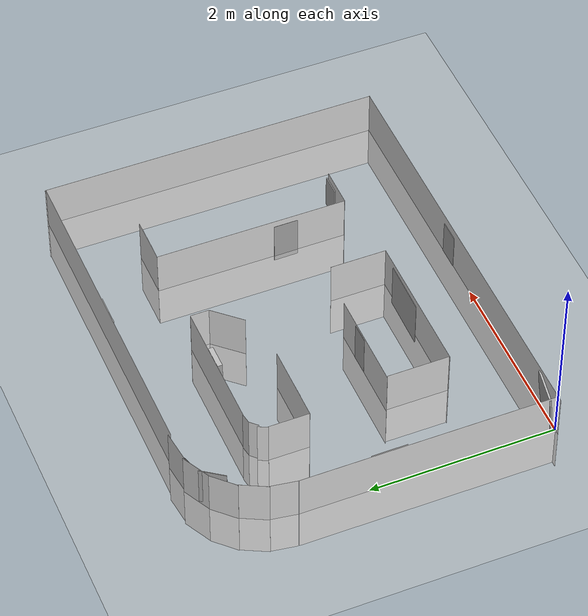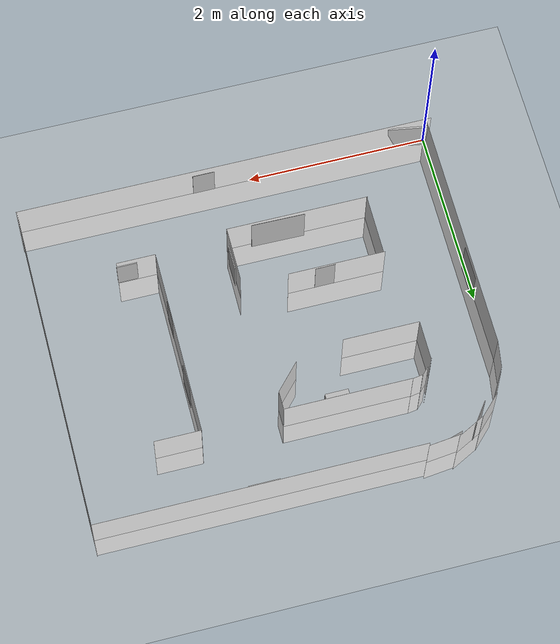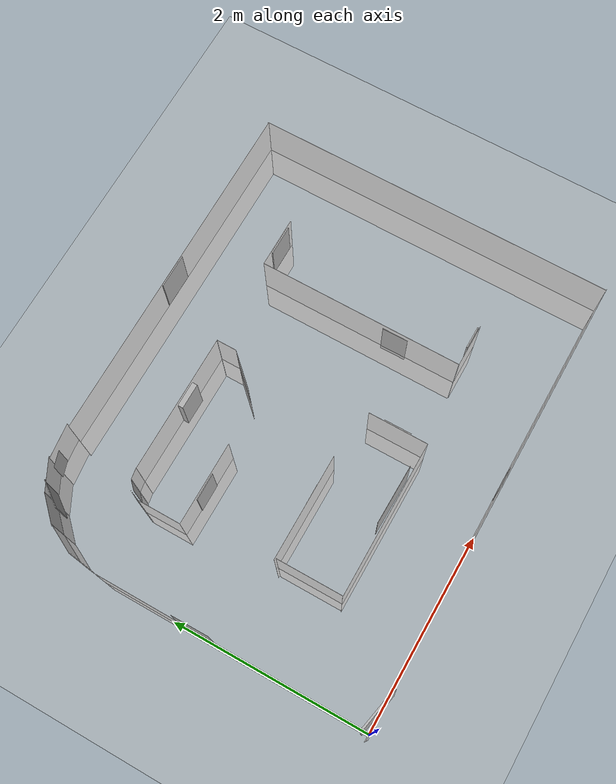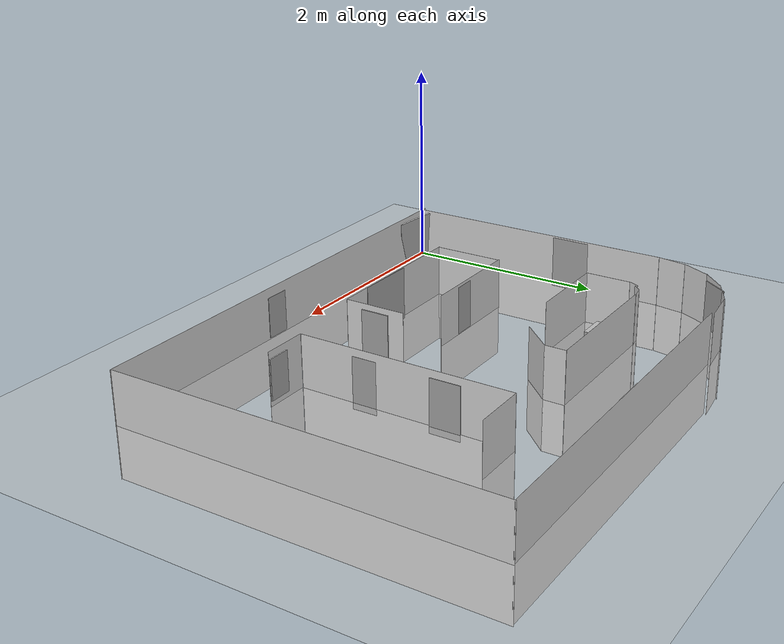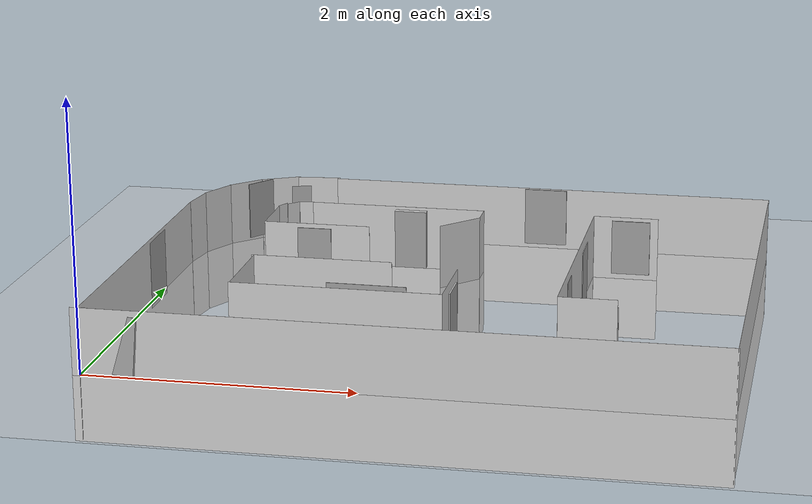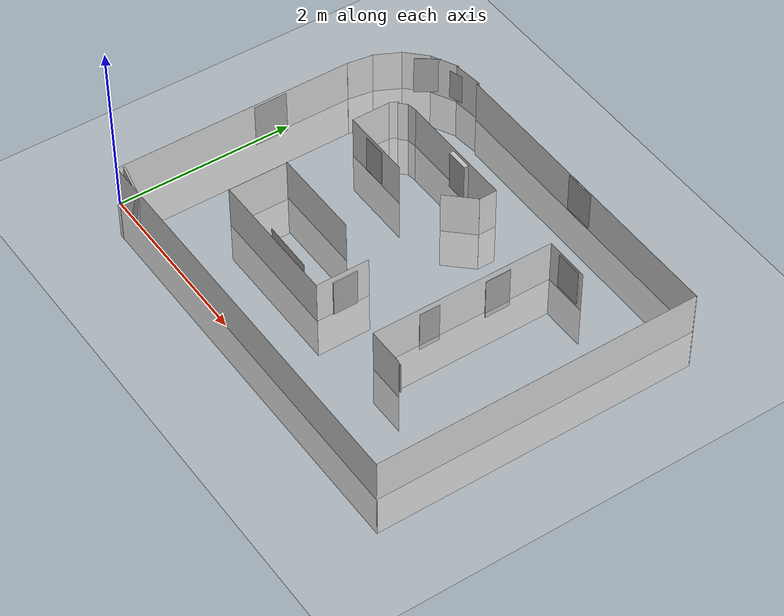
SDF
<sdf version="1.6">
 <world name="default">
  <light name="sun" type="directional">
   <cast_shadows>0</cast_shadows>
   <pose>0 2 3 -1.134 0.7754 0.0872</pose>
   <diffuse>0.8 0.8 0.8 1</diffuse>
   <specular>0.1 0.1 0.1 1</specular>
   <attenuation>
    <range>1000</range>
    <constant>0.9</constant>
    <linear>0.01</linear>
    <quadratic>0.001</quadratic>
   </attenuation>
   <direction>-0.5 0.5 -1</direction>
  </light>
  <light name="sun1" type="directional">
   <cast_shadows>0</cast_shadows>
   <pose>2.4452 4.85 3 -1.865712 0.607529 -0.578042</pose>
   <diffuse>0.8 0.8 0.8 1</diffuse>
   <specular>0.1 0.1 0.1 1</specular>
   <attenuation>
    <range>1000</range>
    <constant>0.9</constant>
    <linear>0.01</linear>
    <quadratic>0.001</quadratic>
   </attenuation>
   <direction>-0.5 0.5 -1</direction>
  </light>
  <light name="sun2" type="directional">
   <cast_shadows>0</cast_shadows>
   <pose>2.13441 -0.95 2.429 -3.072031 -0.758396 2.090716</pose>
   <diffuse>0.8 0.8 0.8 1</diffuse>
   <specular>0.1 0.1 0.1 1</specular>
   <attenuation>
    <range>1000</range>
    <constant>0.9</constant>
    <linear>0.01</linear>
    <quadratic>0.001</quadratic>
   </attenuation>
   <direction>0. 0. -1</direction>
  </light>
  <model name="ground_plane">
   <static>1</static>
   <link name="link">
    <collision name="collision">
     <geometry><plane><normal>0 0 1</normal><size>100 100</size></plane></geometry>
     <surface><friction><ode><mu>100</mu><mu2>50</mu2></ode></friction></surface>
    </collision>
    <visual name="visual">
     <cast_shadows>0</cast_shadows>
     <geometry><plane><normal>0 0 1</normal><size>100 100</size></plane></geometry>
     <material>
      <script><uri>file://media/materials/scripts/gazebo.material</uri><name>Gazebo/Grey</name></script>
     </material>
    </visual>
   </link>
  </model>
  <model name="wall_0">
   <static>1</static>
   <link name="link">
    <collision name="collision"><geometry><box><size>2.746 0.001 1</size></box></geometry></collision>
    <visual name="visual">
     <geometry><box><size>2.746 0.001 1</size></box></geometry>
     <material>
      <script><name>Gazebo/White</name><uri>file://media/materials/scripts/gazebo.material</uri></script>
     </material>
    </visual>
   </link>
   <pose>0 1.3668 0 0 -0 1.5708</pose>
  </model>
  <model name="wall_1">
   <static>1</static>
   <link name="link">
    <collision name="collision"><geometry><box><size>0.286088 0.001 1</size></box></geometry></collision>
    <visual name="visual">
     <geometry><box><size>0.286088 0.001 1</size></box></geometry>
     <material>
      <script><name>Gazebo/White</name><uri>file://media/materials/scripts/gazebo.material</uri></script>
     </material>
    </visual>
   </link>
   <pose>0.022377 2.883 0 0 -0 1.41372</pose>
  </model>
  <model name="wall_2">
   <static>1</static>
   <link name="link">
    <collision name="collision"><geometry><box><size>0.3075 0.001 1</size></box></geometry></collision>
    <visual name="visual">
     <geometry><box><size>0.3075 0.001 1</size></box></geometry>
     <material>
      <script><name>Gazebo/White</name><uri>file://media/materials/scripts/gazebo.material</uri></script>
     </material>
    </visual>
   </link>
   <pose>0.109695 3.1613 0 0 -0 1.09956</pose>
  </model>
  <model name="wall_3">
   <static>1</static>
   <link name="link">
    <collision name="collision"><geometry><box><size>0.3096 0.001 1</size></box></geometry></collision>
    <visual name="visual">
     <geometry><box><size>0.3096 0.001 1</size></box></geometry>
     <material>
      <script><name>Gazebo/White</name><uri>file://media/materials/scripts/gazebo.material</uri></script>
     </material>
    </visual>
   </link>
   <pose>0.2809 3.4042 0 0 -0 0.785398</pose>
  </model>
  <model name="wall_4">
   <static>1</static>
   <link name="link">
    <collision name="collision"><geometry><box><size>0.3297 0.001 1</size></box></geometry></collision>
    <visual name="visual">
     <geometry><box><size>0.3297 0.001 1</size></box></geometry>
     <material>
      <script><name>Gazebo/White</name><uri>file://media/materials/scripts/gazebo.material</uri></script>
     </material>
    </visual>
   </link>
   <pose>0.53949 3.587 0 0 -0 0.471239</pose>
  </model>
  <model name="wall_5">
   <static>1</static>
   <link name="link">
    <collision name="collision"><geometry><box><size>0.350 0.001 1</size></box></geometry></collision>
    <visual name="visual">
     <geometry><box><size>0.350 0.001 1</size></box></geometry>
     <material>
      <script><name>Gazebo/White</name><uri>file://media/materials/scripts/gazebo.material</uri></script>
     </material>
    </visual>
   </link>
   <pose>0.84709 3.6657 0 0 -0 0.1102</pose>
  </model>
  <model name="wall_6">
   <static>1</static>
   <link name="link">
    <collision name="collision"><geometry><box><size>3.587 0.001 1</size></box></geometry></collision>
    <visual name="visual">
     <geometry><box><size>3.587 0.001 1</size></box></geometry>
     <material>
      <script><name>Gazebo/White</name><uri>file://media/materials/scripts/gazebo.material</uri></script>
     </material>
    </visual>
   </link>
   <pose>2.799 3.659 0 0 -0 0</pose>
  </model>
  <model name="wall_7">
   <static>1</static>
   <link name="link">
    <collision name="collision"><geometry><box><size>3.67 0.001 1</size></box></geometry></collision>
    <visual name="visual">
     <geometry><box><size>3.67 0.001 1</size></box></geometry>
     <material>
      <script><name>Gazebo/White</name><uri>file://media/materials/scripts/gazebo.material</uri></script>
     </material>
    </visual>
   </link>
   <pose>4.591 1.833 0 0 0 -1.5708</pose>
  </model>
  <model name="wall_8">
   <static>1</static>
   <link name="link">
    <collision name="collision"><geometry><box><size>4.65761 0.001 1</size></box></geometry></collision>
    <visual name="visual">
     <geometry><box><size>4.65761 0.001 1</size></box></geometry>
     <material>
      <script><name>Gazebo/White</name><uri>file://media/materials/scripts/gazebo.material</uri></script>
     </material>
    </visual>
   </link>
   <pose>2.27 0.0009 0 0 -0 -3.14159</pose>
  </model>
  <model name="wall_9">
   <static>1</static>
   <link name="link">
    <collision name="collision"><geometry><box><size>0.6660 0.001 1</size></box></geometry></collision>
    <visual name="visual">
     <geometry><box><size>0.6660 0.001 1</size></box></geometry>
     <material>
      <script><name>Gazebo/White</name><uri>file://media/materials/scripts/gazebo.material</uri></script>
     </material>
    </visual>
   </link>
   <pose>0.8845 1.0957 0 0 -0 1.5708</pose>
  </model>
  <model name="wall_10">
   <static>1</static>
   <link name="link">
    <collision name="collision"><geometry><box><size>1.073 0.001 1</size></box></geometry></collision>
    <visual name="visual">
     <geometry><box><size>1.073 0.001 1</size></box></geometry>
     <material>
      <script><name>Gazebo/White</name><uri>file://media/materials/scripts/gazebo.material</uri></script>
     </material>
    </visual>
   </link>
   <pose>1.402 1.439 0 0 -0 0</pose>
  </model>
  <model name="wall_11">
   <static>1</static>
   <link name="link">
    <collision name="collision"><geometry><box><size>0.60375 0.001 1</size></box></geometry></collision>
    <visual name="visual">
     <geometry><box><size>0.60375 0.001 1</size></box></geometry>
     <material>
      <script><name>Gazebo/White</name><uri>file://media/materials/scripts/gazebo.material</uri></script>
     </material>
    </visual>
   </link>
   <pose>2.4463 1.062 0 0 0 -1.5708</pose>
  </model>
  <model name="wall_12">
   <static>1</static>
   <link name="link">
    <collision name="collision"><geometry><box><size>1.5751 0.001 1</size></box></geometry></collision>
    <visual name="visual">
     <geometry><box><size>1.5751 0.001 1</size></box></geometry>
     <material>
      <script><name>Gazebo/White</name><uri>file://media/materials/scripts/gazebo.material</uri></script>
     </material>
    </visual>
   </link>
   <pose>1.66044 0.7603 0 0 -0 -3.14159</pose>
  </model>
  <model name="wall_13">
   <static>1</static>
   <link name="link">
    <collision name="collision"><geometry><box><size>0.4365 0.001 1</size></box></geometry></collision>
    <visual name="visual">
     <geometry><box><size>0.4365 0.001 1</size></box></geometry>
     <material>
      <script><name>Gazebo/White</name><uri>file://media/materials/scripts/gazebo.material</uri></script>
     </material>
    </visual>
   </link>
   <pose>0.7356 2.5382 0 0 -0 1.5708</pose>
  </model>
  <model name="wall_15">
   <static>1</static>
   <link name="link">
    <collision name="collision"><geometry><box><size>0.111256 0.001 1</size></box></geometry></collision>
    <visual name="visual">
     <geometry><box><size>0.111256 0.001 1</size></box></geometry>
     <material>
      <script><name>Gazebo/White</name><uri>file://media/materials/scripts/gazebo.material</uri></script>
     </material>
    </visual>
   </link>
   <pose>0.7536 2.8047 0 0 -0 1.09956</pose>
  </model>
  <model name="wall_16">
   <static>1</static>
   <link name="link">
    <collision name="collision"><geometry><box><size>0.111256 0.001 1</size></box></geometry></collision>
    <visual name="visual">
     <geometry><box><size>0.111256 0.001 1</size></box></geometry>
     <material>
      <script><name>Gazebo/White</name><uri>file://media/materials/scripts/gazebo.material</uri></script>
     </material>
    </visual>
   </link>
   <pose>0.8270 2.8691 0 0 -0 0.785398</pose>
  </model>
  <model name="wall_18">
   <static>1</static>
   <link name="link">
    <collision name="collision"><geometry><box><size>0.111256 0.001 1</size></box></geometry></collision>
    <visual name="visual">
     <geometry><box><size>0.111256 0.001 1</size></box></geometry>
     <material>
      <script><name>Gazebo/White</name><uri>file://media/materials/scripts/gazebo.material</uri></script>
     </material>
    </visual>
   </link>
   <pose>0.92362 2.9160 0 0 -0 0.15708</pose>
  </model>
  <model name="wall_19">
   <static>1</static>
   <link name="link">
    <collision name="collision"><geometry><box><size>1.396 0.001 1</size></box></geometry></collision>
    <visual name="visual">
     <geometry><box><size>1.396 0.001 1</size></box></geometry>
     <material>
      <script><name>Gazebo/White</name><uri>file://media/materials/scripts/gazebo.material</uri></script>
     </material>
    </visual>
   </link>
   <pose>1.6740 2.922 0 0 -0 0</pose>
  </model>
  <model name="wall_20">
   <static>1</static>
   <link name="link">
    <collision name="collision"><geometry><box><size>0.2032 0.001 1</size></box></geometry></collision>
    <visual name="visual">
     <geometry><box><size>0.2032 0.001 1</size></box></geometry>
     <material>
      <script><name>Gazebo/White</name><uri>file://media/materials/scripts/gazebo.material</uri></script>
     </material>
    </visual>
   </link>
   <pose>2.3766 2.8202 0 0 0 -1.5708</pose>
  </model>
  <model name="wall_21">
   <static>1</static>
   <link name="link">
    <collision name="collision"><geometry><box><size>0.390425 0.001 1</size></box></geometry></collision>
    <visual name="visual">
     <geometry><box><size>0.390425 0.001 1</size></box></geometry>
     <material>
      <script><name>Gazebo/White</name><uri>file://media/materials/scripts/gazebo.material</uri></script>
     </material>
    </visual>
   </link>
   <pose>2.24402 2.577469 0 0 0 -2.31917</pose>
  </model>
  <model name="wall_23">
   <static>1</static>
   <link name="link">
    <collision name="collision"><geometry><box><size>0.84 0.001 1</size></box></geometry></collision>
    <visual name="visual">
     <geometry><box><size>0.84 0.001 1</size></box></geometry>
     <material>
      <script><name>Gazebo/White</name><uri>file://media/materials/scripts/gazebo.material</uri></script>
     </material>
    </visual>
   </link>
   <pose>1.1537 2.3181 0 0 -0 -3.14159</pose>
  </model>
  <model name="wall_24">
   <static>1</static>
   <link name="link">
    <collision name="collision"><geometry><box><size>0.508001 0.001 1</size></box></geometry></collision>
    <visual name="visual">
     <geometry><box><size>0.508001 0.001 1</size></box></geometry>
     <material>
      <script><name>Gazebo/White</name><uri>file://media/materials/scripts/gazebo.material</uri></script>
     </material>
    </visual>
   </link>
   <pose>3.5132 2.9370 0 0 -0 0</pose>
  </model>
  <model name="wall_25">
   <static>1</static>
   <link name="link">
    <collision name="collision"><geometry><box><size>0.428601 0.001 1</size></box></geometry></collision>
    <visual name="visual">
     <geometry><box><size>0.428601 0.001 1</size></box></geometry>
     <material>
      <script><name>Gazebo/White</name><uri>file://media/materials/scripts/gazebo.material</uri></script>
     </material>
    </visual>
   </link>
   <pose>3.473 0.863 0 0 -0 -3.14159</pose>
  </model>
  <model name="wall_26">
   <static>1</static>
   <link name="link">
    <collision name="collision"><geometry><box><size>2.071 0.001 1</size></box></geometry></collision>
    <visual name="visual">
     <geometry><box><size>2.071 0.001 1</size></box></geometry>
     <material>
      <script><name>Gazebo/White</name><uri>file://media/materials/scripts/gazebo.material</uri></script>
     </material>
    </visual>
   </link>
   <pose>3.2577 1.9027 0 0 0 1.57079632679</pose>
  </model>
  <include><uri>model://Cat1</uri><pose>0.198 0.031 0.242 -2.37 -1.49 0.603</pose></include>
  <include><uri>model://Cow</uri><pose>3.269961 2.3012 0.182 0 -0 1.58</pose></include>
  <include><uri>model://Cow1</uri><pose>3.256678 1.5232 0.18 0 -0 1.58</pose></include>
  <include><uri>model://Cow2</uri><pose>2.522 0.01 0.21 0 -0 0</pose></include>
  <include><uri>model://Dog</uri><pose>1.1339 2.309 0.2426 0 -0 1.58</pose></include>
  <include><uri>model://Dog1</uri><pose>1.530 1.4436 0.2397 0 -0 1.58</pose></include>
  <include><uri>model://Bear</uri><pose>0.706629 3.614199 0.250 0 -0 -2.839837</pose></include>
  <include><uri>model://Bear1</uri><pose>0.02 1.79 0.23 0 -0 -1.5651</pose></include>
  <include><uri>model://Giraffe</uri><pose>1.790 2.88631 0.245 0 -0 0</pose></include>
  <include><uri>model://Horse</uri><pose>3.581 0.881 0.2494 0 -0 0</pose></include>
  <include><uri>model://Horse1</uri><pose>3.5537 2.931 0.2545 0 -0 0</pose></include>
  <include><uri>model://Sheep</uri><pose>2.467 1.075 0.229 0 -0 -1.567</pose></include>
  <include><uri>model://Sheep1</uri><pose>2.77 3.653 0.26 0 -0 0</pose></include>
  <include><uri>model://Zebra</uri><pose>0.4065 3.464 0.2666 0 -0 0.94</pose></include>
  <include><uri>model://Elephant</uri><pose>1.885 0.801677 0.2632 0 -0 -0.014044</pose></include>
  <gravity>0 0 -9.8</gravity>
  <magnetic_field>6e-06 2.3e-05 -4.2e-05</magnetic_field>
  <atmosphere type="adiabatic"/>
  <physics name="default_physics" default="0" type="ode">
   <max_step_size>0.001</max_step_size>
   <real_time_factor>1</real_time_factor>
   <real_time_update_rate>1000</real_time_update_rate>
  </physics>
  <scene><ambient>0.4 0.4 0.4 1</ambient><background>0.7 0.7 0.7 1</background><shadows>1</shadows></scene>
  <spherical_coordinates>
   <surface_model>EARTH_WGS84</surface_model>
   <latitude_deg>0</latitude_deg>
   <longitude_deg>0</longitude_deg>
   <elevation>0</elevation>
   <heading_deg>0</heading_deg>
  </spherical_coordinates>
 </world>
</sdf>

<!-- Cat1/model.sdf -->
<sdf version="1.5">
  <model name="Cat1">
    <static>true</static>
    <link name="link">
      <pose>0 0 0 0 0 0</pose>
      <collision name="collision">
        <geometry>
          <box>
            <size>.44 0.44 .02</size>
          </box>
        </geometry>
      </collision>
      <visual name="visual">
        <cast_shadows>false</cast_shadows>
        <geometry>
          <box>
            <size>.44 0.44 .02</size>
          </box>
        </geometry>
        <material>
          <script>
            <uri>model://Cat1/materials/scripts</uri>
            <uri>model://Cat1/materials/textures</uri>
            <name>vrc/Cat1</name>
          </script>
        </material>
      </visual>
    </link>
  </model>
</sdf>

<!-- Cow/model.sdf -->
<sdf version="1.5">
  <model name="Cow">
    <static>true</static>
    <link name="link">
      <pose>0 0 0 0 0 0</pose>
      <collision name="collision">
        <geometry>
          <box>
            <size>.2932 0.0060 .5016</size>
          </box>
        </geometry>
      </collision>
      <visual name="visual">
        <cast_shadows>false</cast_shadows>
        <geometry>
          <box>
            <size>.2932 0.0060 .5016</size>
          </box>
        </geometry>
        <material>
          <script>
            <uri>model://Cow/materials/scripts</uri>
            <uri>model://Cow/materials/textures</uri>
            <name>vrc/Cow</name>
          </script>
        </material>
      </visual>
    </link>
  </model>
</sdf>

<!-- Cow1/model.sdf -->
<sdf version="1.5">
  <model name="Cow1">
    <static>true</static>
    <link name="link">
      <pose>0 0 0 0 0 0</pose>
      <collision name="collision">
        <geometry>
          <box>
            <size>.260 0.005 .4903</size>
          </box>
        </geometry>
      </collision>
      <visual name="visual">
        <cast_shadows>false</cast_shadows>
        <geometry>
          <box>
            <size>.260 0.005 .4903</size>
          </box>
        </geometry>
        <material>
          <script>
            <uri>model://Cow1/materials/scripts</uri>
            <uri>model://Cow1/materials/textures</uri>
            <name>vrc/Cow1</name>
          </script>
        </material>
      </visual>
    </link>
  </model>
</sdf>

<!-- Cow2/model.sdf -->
<sdf version="1.5">
  <model name="Cow2">
    <static>true</static>
    <link name="link">
      <pose>0 0 0 0 0 0</pose>
      <collision name="collision">
        <geometry>
          <box>
            <size>.242 0.005 .3984</size>
          </box>
        </geometry>
      </collision>
      <visual name="visual">
        <cast_shadows>false</cast_shadows>
        <geometry>
          <box>
            <size>.242 0.005 .3984</size>
          </box>
        </geometry>
        <material>
          <script>
            <uri>model://Cow2/materials/scripts</uri>
            <uri>model://Cow2/materials/textures</uri>
            <name>vrc/Cow2</name>
          </script>
        </material>
      </visual>
    </link>
  </model>
</sdf>

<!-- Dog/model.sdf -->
<sdf version="1.5">
  <model name="Dog">
    <static>true</static>
    <link name="link">
      <pose>0 0 0 0 0 0</pose>
      <collision name="collision">
        <geometry>
          <box>
            <size>.0072 0.2677 .4462</size>
          </box>
        </geometry>
      </collision>
      <visual name="visual">
        <cast_shadows>false</cast_shadows>
        <geometry>
          <box>
            <size>.0072 0.2677 .4462</size>
          </box>
        </geometry>
        <material>
          <script>
            <uri>model://Dog/materials/scripts</uri>
            <uri>model://Dog/materials/textures</uri>
            <name>vrc/Dog</name>
          </script>
        </material>
      </visual>
    </link>
  </model>
</sdf>

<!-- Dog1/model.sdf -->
<sdf version="1.5">
  <model name="Dog1">
    <static>true</static>
    <link name="link">
      <pose>0 0 0 0 0 0</pose>
      <collision name="collision">
        <geometry>
          <box>
            <size>.00169 0.2184 .4689</size>
          </box>
        </geometry>
      </collision>
      <visual name="visual">
        <cast_shadows>false</cast_shadows>
        <geometry>
          <box>
            <size>.00169 0.2184 .4689</size>
          </box>
        </geometry>
        <material>
          <script>
            <uri>model://Dog1/materials/scripts</uri>
            <uri>model://Dog1/materials/textures</uri>
            <name>vrc/Dog1</name>
          </script>
        </material>
      </visual>
    </link>
  </model>
</sdf>

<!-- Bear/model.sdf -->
<sdf version="1.5">
  <model name="Bear">
    <static>true</static>
    <link name="link">
      <pose>0 0 0 0 0 0</pose>
      <collision name="collision">
        <geometry>
          <box>
            <size>.1615 0.00002 .3642</size>
          </box>
        </geometry>
      </collision>
      <visual name="visual">
        <cast_shadows>false</cast_shadows>
        <geometry>
          <box>
            <size>.1615 0.00002 .3642</size>
          </box>
        </geometry>
        <material>
          <script>
            <uri>model://Bear/materials/scripts</uri>
            <uri>model://Bear/materials/textures</uri>
            <name>vrc/Bear</name>
          </script>
        </material>
      </visual>
    </link>
  </model>
</sdf>

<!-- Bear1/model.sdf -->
<sdf version="1.5">
  <model name="Bear1">
    <static>true</static>
    <link name="link">
      <pose>0 0 0 0 0 0</pose>
      <collision name="collision">
        <geometry>
          <box>
            <size>.3851 0.00002 .5211</size>
          </box>
        </geometry>
      </collision>
      <visual name="visual">
        <cast_shadows>false</cast_shadows>
        <geometry>
          <box>
            <size>.3851 0.00002 .5211</size>
          </box>
        </geometry>
        <material>
          <script>
            <uri>model://Bear1/materials/scripts</uri>
            <uri>model://Bear1/materials/textures</uri>
            <name>vrc/Bear1</name>
          </script>
        </material>
      </visual>
    </link>
  </model>
</sdf>

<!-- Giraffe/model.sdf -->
<sdf version="1.5">
  <model name="Giraffe">
    <static>true</static>
    <link name="link">
      <pose>0 0 0 0 0 0</pose>
      <collision name="collision">
        <geometry>
          <box>
            <size>.2543 0.053 .465</size>
          </box>
        </geometry>
      </collision>
      <visual name="visual">
        <cast_shadows>false</cast_shadows>
        <geometry>
          <box>
            <size>.2543 0.053 .465</size>
          </box>
        </geometry>
        <material>
          <script>
            <uri>model://Giraffe/materials/scripts</uri>
            <uri>model://Giraffe/materials/textures</uri>
            <name>vrc/Giraffe</name>
          </script>
        </material>
      </visual>
    </link>
  </model>
</sdf>

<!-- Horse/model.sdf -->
<sdf version="1.5">
  <model name="Horse">
    <static>true</static>
    <link name="link">
      <pose>0 0 0 0 0 0</pose>
      <collision name="collision">
        <geometry>
          <box>
            <size>.2232 0.011 .383</size>
          </box>
        </geometry>
      </collision>
      <visual name="visual">
        <cast_shadows>false</cast_shadows>
        <geometry>
          <box>
            <size>.2232 0.011 .383</size>
          </box>
        </geometry>
        <material>
          <script>
            <uri>model://Horse/materials/scripts</uri>
            <uri>model://Horse/materials/textures</uri>
            <name>vrc/Horse</name>
          </script>
        </material>
      </visual>
    </link>
  </model>
</sdf>

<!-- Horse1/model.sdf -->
<sdf version="1.5">
  <model name="Horse1">
    <static>true</static>
    <link name="link">
      <pose>0 0 0 0 0 0</pose>
      <collision name="collision">
        <geometry>
          <box>
            <size>.301 0.011 .432</size>
          </box>
        </geometry>
      </collision>
      <visual name="visual">
        <cast_shadows>false</cast_shadows>
        <geometry>
          <box>
            <size>.301 0.011 .432</size>
          </box>
        </geometry>
        <material>
          <script>
            <uri>model://Horse1/materials/scripts</uri>
            <uri>model://Horse1/materials/textures</uri>
            <name>vrc/Horse1</name>
          </script>
        </material>
      </visual>
    </link>
  </model>
</sdf>

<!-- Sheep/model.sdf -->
<sdf version="1.5">
  <model name="Sheep">
    <static>true</static>
    <link name="link">
      <pose>0 0 0 0 0 0</pose>
      <collision name="collision">
        <geometry>
          <box>
            <size>.278 0.011 .44</size>
          </box>
        </geometry>
      </collision>
      <visual name="visual">
        <cast_shadows>false</cast_shadows>
        <geometry>
          <box>
            <size>.278 0.011 .44</size>
          </box>
        </geometry>
        <material>
          <script>
            <uri>model://Sheep/materials/scripts</uri>
            <uri>model://Sheep/materials/textures</uri>
            <name>vrc/Sheep</name>
          </script>
        </material>
      </visual>
    </link>
  </model>
</sdf>

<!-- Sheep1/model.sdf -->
<sdf version="1.5">
  <model name="Sheep1">
    <static>true</static>
    <link name="link">
      <pose>0 0 0 0 0 0</pose>
      <collision name="collision">
        <geometry>
          <box>
            <size>.343 0.011 .462</size>
          </box>
        </geometry>
      </collision>
      <visual name="visual">
        <cast_shadows>false</cast_shadows>
        <geometry>
          <box>
            <size>.343 0.011 .462</size>
          </box>
        </geometry>
        <material>
          <script>
            <uri>model://Sheep1/materials/scripts</uri>
            <uri>model://Sheep1/materials/textures</uri>
            <name>vrc/Sheep1</name>
          </script>
        </material>
      </visual>
    </link>
  </model>
</sdf>

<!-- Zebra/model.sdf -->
<sdf version="1.5">
  <model name="Zebra">
    <static>true</static>
    <link name="link">
      <pose>0 0 0 0 0 0</pose>
      <collision name="collision">
        <geometry>
          <box>
            <size>.2846 0.007 .4602</size>
          </box>
        </geometry>
      </collision>
      <visual name="visual">
        <cast_shadows>false</cast_shadows>
        <geometry>
          <box>
            <size>.2846 0.007 .460</size>
          </box>
        </geometry>
        <material>
          <script>
            <uri>model://Zebra/materials/scripts</uri>
            <uri>model://Zebra/materials/textures</uri>
            <name>vrc/Zebra</name>
          </script>
        </material>
      </visual>
    </link>
  </model>
</sdf>

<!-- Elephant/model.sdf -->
<sdf version="1.5">
  <model name="Elephant">
    <static>true</static>
    <link name="link">
      <pose>0 0 0 0 0 0</pose>
      <collision name="collision">
        <geometry>
          <box>
            <size>.5895 0.0036 .5223</size>
          </box>
        </geometry>
      </collision>
      <visual name="visual">
        <cast_shadows>false</cast_shadows>
        <geometry>
          <box>
            <size>.5895 0.0036 .5223</size>
          </box>
        </geometry>
        <material>
          <script>
            <uri>model://Elephant/materials/scripts</uri>
            <uri>model://Elephant/materials/textures</uri>
            <name>vrc/Elephant</name>
          </script>
        </material>
      </visual>
    </link>
  </model>
</sdf>
